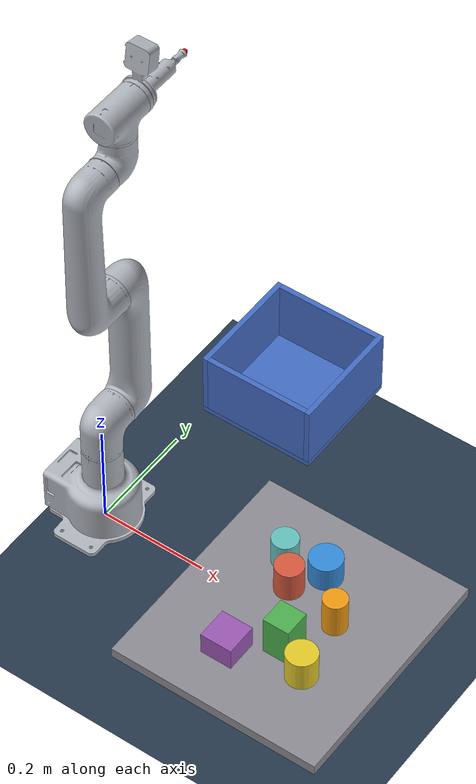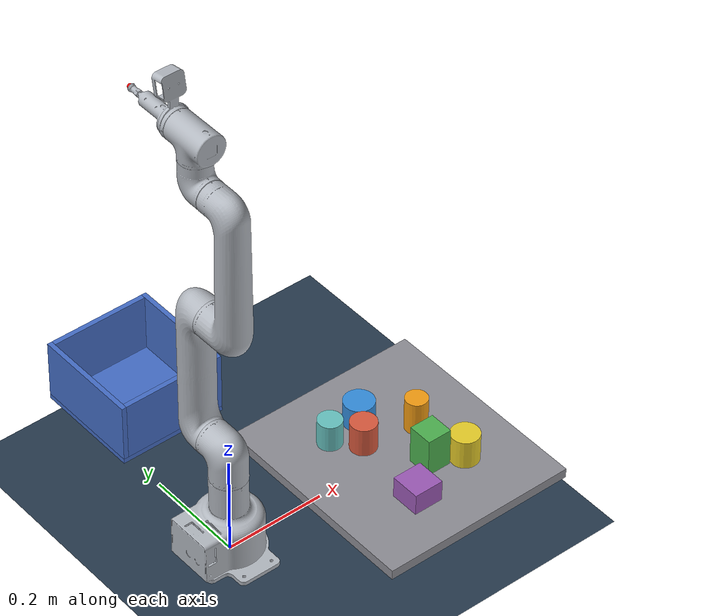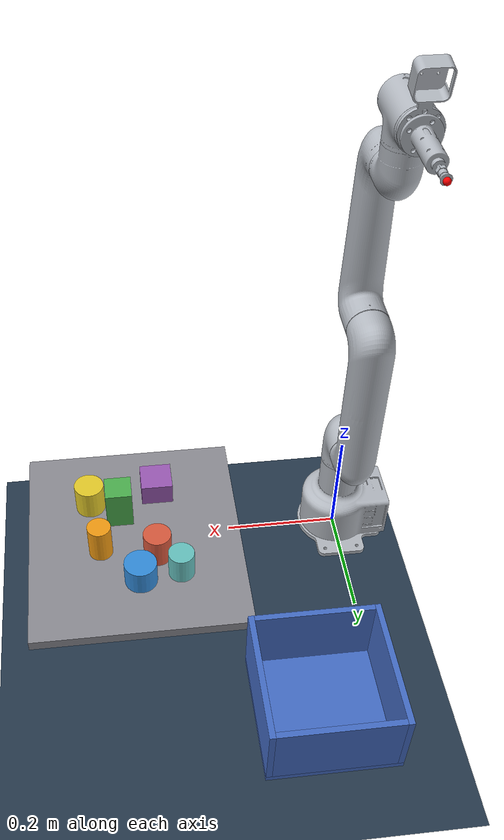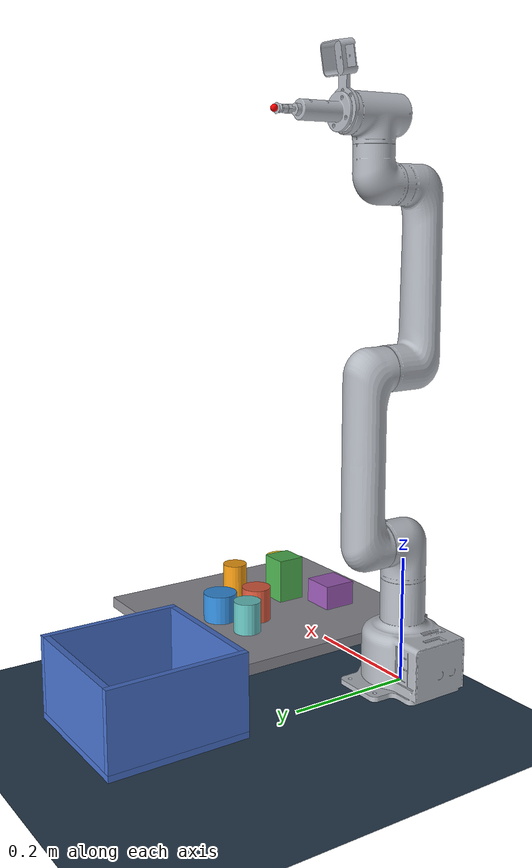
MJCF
<mujoco model="mycobot_sim">
  <compiler angle="radian" meshdir="meshes" autolimits="true"/>
  <option timestep="0.002" gravity="0 0 -9.81"/>
  <visual><global offwidth="1280" offheight="960"/>
    <headlight diffuse="0.6 0.6 0.6" ambient="0.4 0.4 0.4"/><map znear="0.01"/></visual>
  <asset>
    <texture name="grid" type="2d" builtin="checker" rgb1=".2 .3 .4" rgb2=".1 .15 .2" width="300" height="300"/>
    <material name="grid" texture="grid" texrepeat="8 8" reflectance=".1"/>
    <material name="metal" rgba="0.7 0.72 0.75 1"/>
    <material name="box" rgba="0.27 0.43 0.78 1"/>
    <material name="table" rgba="0.55 0.55 0.58 1"/>
    <material name="o0" rgba="0.85 0.35 0.24 1"/>
    <material name="o1" rgba="0.30 0.69 0.31 1"/>
    <material name="o2" rgba="0.20 0.55 0.86 1"/>
    <material name="o3" rgba="0.95 0.61 0.07 1"/>
    <material name="o4" rgba="0.61 0.35 0.71 1"/>
    <material name="o5" rgba="0.90 0.80 0.16 1"/>
    <material name="o6" rgba="0.40 0.76 0.75 1"/>
    <mesh name="base" file="base.stl"/>
    <mesh name="link1" file="link1.stl"/>
    <mesh name="link2" file="link2.stl"/>
    <mesh name="link3" file="link3.stl"/>
    <mesh name="link4" file="link4.stl"/>
    <mesh name="link5" file="link5.stl"/>
    <mesh name="link6" file="link6.stl"/>
    <mesh name="camera_mount" file="camera_mount.stl"/>
    <mesh name="suction_cup" file="suction_cup.stl"/>
  </asset>
  <worldbody>
    <light pos="0.3 0.1 1.5" dir="0 0 -1" diffuse="0.8 0.8 0.8"/>
    <geom name="floor" type="plane" size="2 2 0.1" pos="0 0 -0.1200" material="grid"/>
    <geom name="table" type="box" pos="0.38 0.00 -0.0100" size="0.20 0.22 0.01" material="table"/>
    <!-- place bin at [0.10,0.40], floor top at 0.0, ~12 cm walls -->
    <geom name="box_floor" type="box" pos="0.1000 0.4000 -0.0050" size="0.1100 0.1100 0.0050" material="box"/>
    <geom name="box_xm" type="box" pos="-0.0050 0.4000 0.0600" size="0.0050 0.1100 0.0600" material="box"/>
    <geom name="box_xp" type="box" pos="0.2050 0.4000 0.0600" size="0.0050 0.1100 0.0600" material="box"/>
    <geom name="box_ym" type="box" pos="0.1000 0.2950 0.0600" size="0.1000 0.0050 0.0600" material="box"/>
    <geom name="box_yp" type="box" pos="0.1000 0.5050 0.0600" size="0.1000 0.0050 0.0600" material="box"/>
    <camera name="iso" pos="1.05 -0.55 0.78" xyaxes="0.45 0.89 0 -0.5 0.25 0.83"/>
    <camera name="front" pos="0.38 -0.85 0.45" xyaxes="1 0 0 0 0.45 0.89"/>
    <camera name="top" pos="0.38 0.0 0.9" xyaxes="1 0 0 0 1 0"/>
    <body name="base_link" pos="0 0 0">
        <body name="base" pos="0.000000 0.000000 0.000000" quat="1.000000 0.000000 0.000000 0.000000">
            <geom type="mesh" mesh="base" material="metal" contype="0" conaffinity="0"/>
            <body name="link1" pos="0.000000 0.000000 0.229340" quat="1.000000 0.000000 0.000000 0.000000">
                <joint name="joint1" type="hinge" axis="0.0000 0.0000 1.0000" range="-3.1416 3.1416" damping="1.0"/>
                <geom type="mesh" mesh="link1" material="metal" contype="0" conaffinity="0"/>
                <body name="link2" pos="0.000000 0.000000 0.000000" quat="-0.500023 -0.499975 0.500025 -0.499977">
                    <joint name="joint2" type="hinge" axis="0.0000 0.0000 -1.0000" range="-3.1416 3.1416" damping="1.0"/>
                    <geom type="mesh" mesh="link2" material="metal" contype="0" conaffinity="0"/>
                    <body name="link3" pos="0.270000 0.000000 0.000000" quat="1.000000 0.000000 0.000000 0.000000">
                        <joint name="joint3" type="hinge" axis="0.0000 0.0000 -1.0000" range="-2.6100 2.6180" damping="1.0"/>
                        <geom type="mesh" mesh="link3" material="metal" contype="0" conaffinity="0"/>
                        <body name="link4" pos="0.267000 0.000000 -0.074500" quat="0.707105 0.000000 0.000000 0.707108">
                            <joint name="joint4" type="hinge" axis="0.0000 0.0000 -1.0000" range="-2.9670 2.9670" damping="1.0"/>
                            <geom type="mesh" mesh="link4" material="metal" contype="0" conaffinity="0"/>
                            <body name="link5" pos="0.000000 -0.095000 0.002000" quat="0.500048 0.500000 -0.500000 0.499952">
                                <joint name="joint5" type="hinge" axis="0.0000 0.0000 1.0000" range="-2.9300 2.9321" damping="1.0"/>
                                <geom type="mesh" mesh="link5" material="metal" contype="0" conaffinity="0"/>
                                <body name="link6" pos="-0.054000 0.000000 0.000000" quat="0.707141 -0.707073 0.000000 0.000000">
                                    <joint name="joint6" type="hinge" axis="-1.0000 0.0000 0.0000" range="-3.0300 3.0368" damping="1.0"/>
                                    <geom type="mesh" mesh="link6" material="metal" contype="0" conaffinity="0"/>
                                    <body name="camera_mount" pos="-0.003000 -0.003000 0.000000" quat="0.000003 -0.707105 0.000003 0.707108">
                                        <geom type="mesh" mesh="camera_mount" material="metal" contype="0" conaffinity="0"/>
                                    </body>
                                    <body name="suction_cup" pos="0.000000 0.000000 0.000000" quat="0.707105 0.000000 0.707108 0.000000">
                                        <geom type="mesh" mesh="suction_cup" material="metal" contype="0" conaffinity="0"/>
                                        <body name="tcp" pos="0.000000 0.000000 -0.115000" quat="-0.000004 1.000000 0.000000 0.000000">
                                            <site name="tcp" size="0.005" rgba="1 0 0 1"/>
                                            <site name="tip_rf" size="0.004" rgba="0 1 0 0.6"/>
                                        </body>
                                        <body name="eef" pos="0.000000 0.000000 -0.105000" quat="-0.000004 1.000000 0.000000 0.000000">
                                        </body>
                                    </body>
                                </body>
                            </body>
                        </body>
                    </body>
                </body>
            </body>
        </body>
    </body>
    <!-- cluttered objects on the table (kinematic; freejoints) -->
    <body name="object0" pos="0.340 0.050 0.030"><freejoint name="obj0_free"/>
      <geom name="g_object0" type="cylinder" size="0.026 0.030" material="o0" mass="0.05"/></body>
    <body name="object1" pos="0.405 -0.055 0.040"><freejoint name="obj1_free"/>
      <geom name="g_object1" type="box" size="0.025 0.025 0.040" material="o1" mass="0.05"/></body>
    <body name="object2" pos="0.375 0.105 0.025"><freejoint name="obj2_free"/>
      <geom name="g_object2" type="cylinder" size="0.030 0.025" material="o2" mass="0.05"/></body>
    <body name="object3" pos="0.445 0.030 0.035"><freejoint name="obj3_free"/>
      <geom name="g_object3" type="cylinder" size="0.022 0.035" material="o3" mass="0.05"/></body>
    <body name="object4" pos="0.330 -0.110 0.022"><freejoint name="obj4_free"/>
      <geom name="g_object4" type="box" size="0.030 0.030 0.022" material="o4" mass="0.05"/></body>
    <body name="object5" pos="0.460 -0.085 0.030"><freejoint name="obj5_free"/>
      <geom name="g_object5" type="cylinder" size="0.028 0.030" material="o5" mass="0.05"/></body>
    <body name="object6" pos="0.300 0.095 0.028"><freejoint name="obj6_free"/>
      <geom name="g_object6" type="cylinder" size="0.024 0.028" material="o6" mass="0.05"/></body>
  </worldbody>
  <actuator>
    <position name="act_joint1" joint="joint1" kp="80" ctrlrange="-6.5 6.5"/>
    <position name="act_joint2" joint="joint2" kp="80" ctrlrange="-6.5 6.5"/>
    <position name="act_joint3" joint="joint3" kp="80" ctrlrange="-6.5 6.5"/>
    <position name="act_joint4" joint="joint4" kp="80" ctrlrange="-6.5 6.5"/>
    <position name="act_joint5" joint="joint5" kp="80" ctrlrange="-6.5 6.5"/>
    <position name="act_joint6" joint="joint6" kp="80" ctrlrange="-6.5 6.5"/>
  </actuator>
  <sensor>
    <rangefinder name="tip_range" site="tip_rf"/>
  </sensor>
</mujoco>
